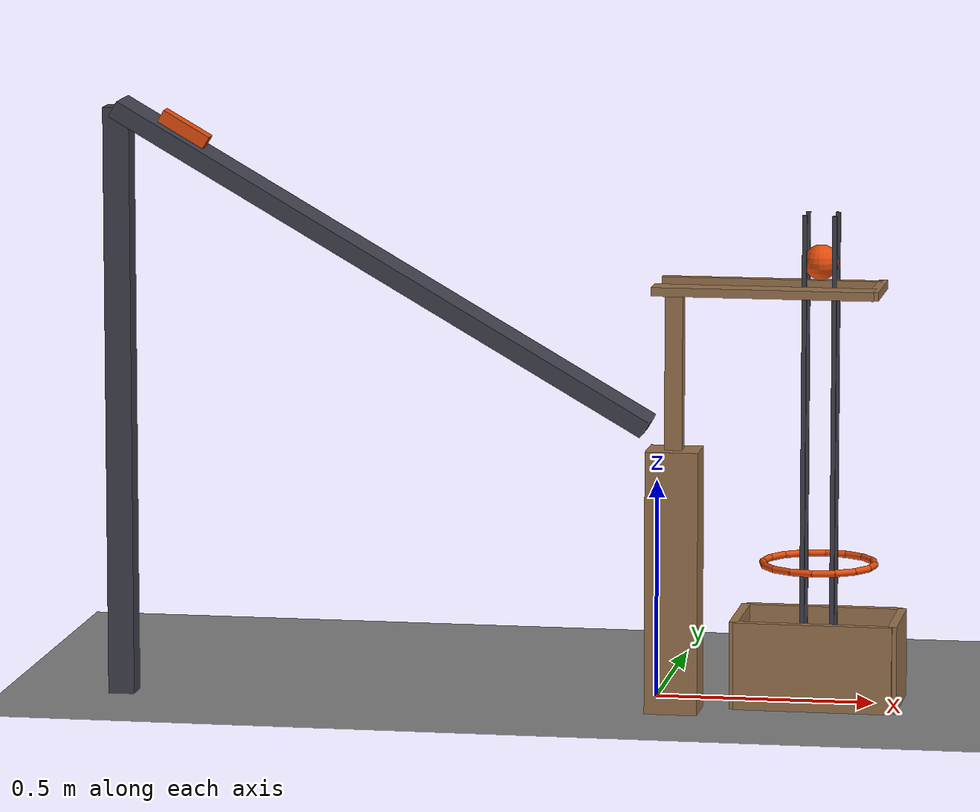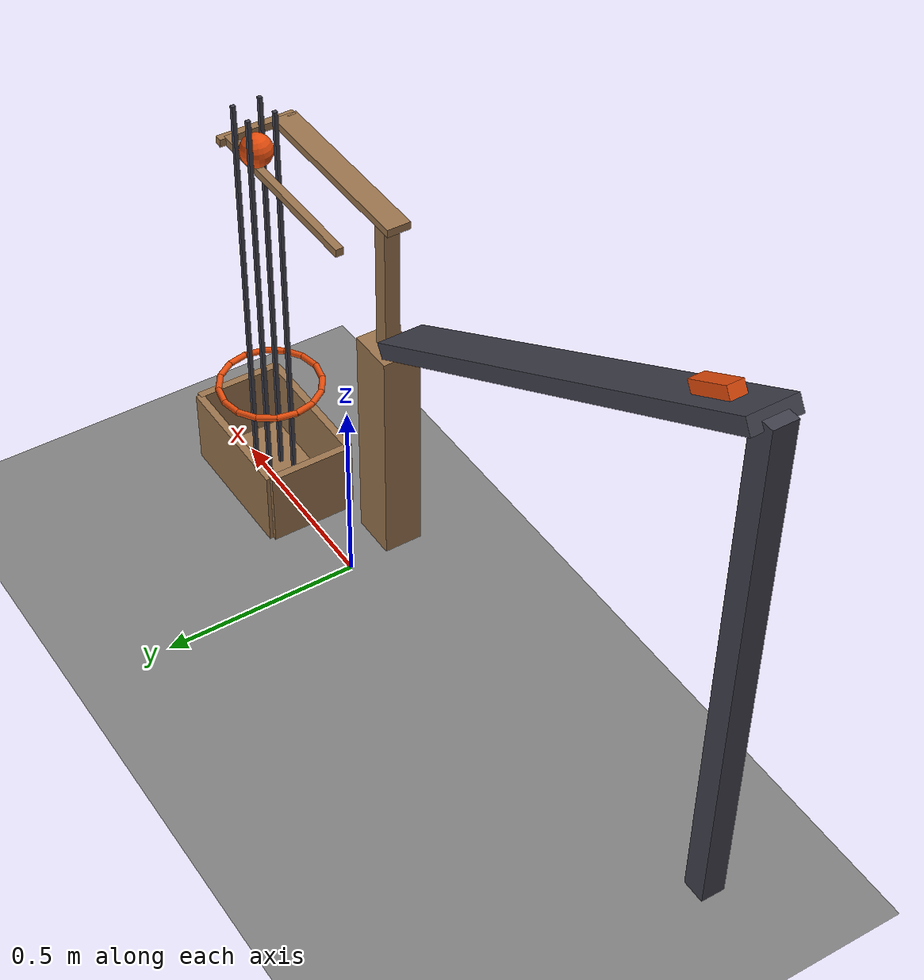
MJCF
<mujoco model="cart_domino_flap_release">
  <compiler angle="radian"/>
  <option timestep="0.002"/>
  <worldbody>
    <geom name="floor" type="plane" size="6 6 0.1" friction="0.8 0.005 0.002"/>
    <body name="rail">
      <geom name="rail" type="box" pos="-0.606218 -0.15 1" size="0.7 0.06 0.02" euler="0 0.523599 0" friction="0.02 0.005 0.0001" solref="0.01 1" rgba="0.25 0.25 0.3 1"/>
    </body>
    <body name="rail support">
      <geom name="rail support" type="box" pos="-1.21244 -0.15 0.675" size="0.03 0.03 0.675" rgba="0.25 0.25 0.3 1"/>
    </body>
    <body name="domino support">
      <geom name="domino support" type="box" pos="0.06 -0.15 0.3" size="0.06 0.05 0.3" friction="0.65 0.005 0.0001" solref="0.01 1" rgba="0.6 0.45 0.3 1"/>
    </body>
    <body name="domino" pos="0.06 -0.15 0.775">
      <freejoint/>
      <geom name="domino" type="box" pos="0 0 0" size="0.02 0.02 0.175" mass="0.15" friction="0.65 0.005 0.0001" solref="0.01 1" rgba="0.6 0.45 0.3 1"/>
    </body>
    <body name="cart" pos="-1.05869 -0.15 1.30165">
      <freejoint/>
      <geom name="cart" type="box" pos="0 0 0" size="0.0600004 0.02 0.015" euler="0 0.523595 0" mass="0.8" friction="0.02 0.005 0.0001" solref="0.01 1" rgba="0.9 0.3 0.05 1"/>
    </body>
    <body name="flap" pos="0.51 -0.15 0.96">
      <joint name="flap_hinge" type="hinge" pos="0 0 0" axis="0 1 0" limited="true" range="-1.39626 0" stiffness="1" springref="-1.39626" damping="0.05" armature="0.002"/>
      <geom name="flap" type="box" pos="-0.25 0 0" size="0.25 0.03 0.01" mass="0.3" friction="0.15 0.005 0.0001" solref="0.01 1" rgba="0.6 0.45 0.3 1"/>
      <geom name="flap shelf" type="box" pos="-0.25 0.15 0" size="0.25 0.01 0.01" mass="0.08" friction="0.08 0.005 0.0001" solref="0.01 1" rgba="0.6 0.45 0.3 1"/>
      <geom name="flap crossbar" type="box" pos="0 0.075 0" size="0.01 0.1 0.01" mass="0.05" friction="0.08 0.005 0.0001" solref="0.01 1" rgba="0.6 0.45 0.3 1"/>
    </body>
    <body name="ball" pos="0.371 0 1.01">
      <freejoint/>
      <geom name="ball" type="sphere" pos="0 0 0" size="0.04" mass="0.15" condim="6" friction="0.08 0.02 0.01" solref="0.01 1" rgba="0.9 0.3 0.05 1"/>
    </body>
    <body name="guide near left">
      <geom name="guide near left" type="box" pos="0.337 0.034 0.56" size="0.005 0.005 0.56" friction="0.03 0.005 0.0001" solref="0.01 1" rgba="0.25 0.25 0.3 1"/>
    </body>
    <body name="guide near right">
      <geom name="guide near right" type="box" pos="0.337 -0.034 0.56" size="0.005 0.005 0.56" friction="0.03 0.005 0.0001" solref="0.01 1" rgba="0.25 0.25 0.3 1"/>
    </body>
    <body name="guide far left">
      <geom name="guide far left" type="box" pos="0.405 0.034 0.56" size="0.005 0.005 0.56" friction="0.03 0.005 0.0001" solref="0.01 1" rgba="0.25 0.25 0.3 1"/>
    </body>
    <body name="guide far right">
      <geom name="guide far right" type="box" pos="0.405 -0.034 0.56" size="0.005 0.005 0.56" friction="0.03 0.005 0.0001" solref="0.01 1" rgba="0.25 0.25 0.3 1"/>
    </body>
    <body name="ring">
      <geom name="ring_00" type="capsule" size="0.008" fromto="0.499 0 0.32 0.489257 0.0489835 0.32" friction="0.1 0.005 0.0001" solref="0.01 1" rgba="0.9 0.3 0.05 1"/>
      <geom name="ring_01" type="capsule" size="0.008" fromto="0.489257 0.0489835 0.32 0.46151 0.0905097 0.32" friction="0.1 0.005 0.0001" solref="0.01 1" rgba="0.9 0.3 0.05 1"/>
      <geom name="ring_02" type="capsule" size="0.008" fromto="0.46151 0.0905097 0.32 0.419983 0.118257 0.32" friction="0.1 0.005 0.0001" solref="0.01 1" rgba="0.9 0.3 0.05 1"/>
      <geom name="ring_03" type="capsule" size="0.008" fromto="0.419983 0.118257 0.32 0.371 0.128 0.32" friction="0.1 0.005 0.0001" solref="0.01 1" rgba="0.9 0.3 0.05 1"/>
      <geom name="ring_04" type="capsule" size="0.008" fromto="0.371 0.128 0.32 0.322017 0.118257 0.32" friction="0.1 0.005 0.0001" solref="0.01 1" rgba="0.9 0.3 0.05 1"/>
      <geom name="ring_05" type="capsule" size="0.008" fromto="0.322017 0.118257 0.32 0.28049 0.0905097 0.32" friction="0.1 0.005 0.0001" solref="0.01 1" rgba="0.9 0.3 0.05 1"/>
      <geom name="ring_06" type="capsule" size="0.008" fromto="0.28049 0.0905097 0.32 0.252743 0.0489835 0.32" friction="0.1 0.005 0.0001" solref="0.01 1" rgba="0.9 0.3 0.05 1"/>
      <geom name="ring_07" type="capsule" size="0.008" fromto="0.252743 0.0489835 0.32 0.243 1.56755e-17 0.32" friction="0.1 0.005 0.0001" solref="0.01 1" rgba="0.9 0.3 0.05 1"/>
      <geom name="ring_08" type="capsule" size="0.008" fromto="0.243 1.56755e-17 0.32 0.252743 -0.0489835 0.32" friction="0.1 0.005 0.0001" solref="0.01 1" rgba="0.9 0.3 0.05 1"/>
      <geom name="ring_09" type="capsule" size="0.008" fromto="0.252743 -0.0489835 0.32 0.28049 -0.0905097 0.32" friction="0.1 0.005 0.0001" solref="0.01 1" rgba="0.9 0.3 0.05 1"/>
      <geom name="ring_10" type="capsule" size="0.008" fromto="0.28049 -0.0905097 0.32 0.322017 -0.118257 0.32" friction="0.1 0.005 0.0001" solref="0.01 1" rgba="0.9 0.3 0.05 1"/>
      <geom name="ring_11" type="capsule" size="0.008" fromto="0.322017 -0.118257 0.32 0.371 -0.128 0.32" friction="0.1 0.005 0.0001" solref="0.01 1" rgba="0.9 0.3 0.05 1"/>
      <geom name="ring_12" type="capsule" size="0.008" fromto="0.371 -0.128 0.32 0.419983 -0.118257 0.32" friction="0.1 0.005 0.0001" solref="0.01 1" rgba="0.9 0.3 0.05 1"/>
      <geom name="ring_13" type="capsule" size="0.008" fromto="0.419983 -0.118257 0.32 0.46151 -0.0905097 0.32" friction="0.1 0.005 0.0001" solref="0.01 1" rgba="0.9 0.3 0.05 1"/>
      <geom name="ring_14" type="capsule" size="0.008" fromto="0.46151 -0.0905097 0.32 0.489257 -0.0489835 0.32" friction="0.1 0.005 0.0001" solref="0.01 1" rgba="0.9 0.3 0.05 1"/>
      <geom name="ring_15" type="capsule" size="0.008" fromto="0.489257 -0.0489835 0.32 0.499 -3.1351e-17 0.32" friction="0.1 0.005 0.0001" solref="0.01 1" rgba="0.9 0.3 0.05 1"/>
    </body>
    <body name="box">
      <geom name="box_base" type="box" pos="0.371 0 0.01" size="0.18 0.11 0.01" friction="1 0.02 0.01" solref="0.01 1" rgba="0.6 0.45 0.3 1"/>
      <geom name="box_near_wall" type="box" pos="0.191 0 0.1" size="0.01 0.11 0.1" friction="1 0.02 0.01" solref="0.01 1" rgba="0.6 0.45 0.3 1"/>
      <geom name="box_far_wall" type="box" pos="0.551 0 0.1" size="0.01 0.11 0.1" friction="1 0.02 0.01" solref="0.01 1" rgba="0.6 0.45 0.3 1"/>
      <geom name="box_left_wall" type="box" pos="0.371 0.11 0.1" size="0.18 0.01 0.1" friction="1 0.02 0.01" solref="0.01 1" rgba="0.6 0.45 0.3 1"/>
      <geom name="box_right_wall" type="box" pos="0.371 -0.11 0.1" size="0.18 0.01 0.1" friction="1 0.02 0.01" solref="0.01 1" rgba="0.6 0.45 0.3 1"/>
    </body>
  </worldbody>
  <keyframe>
    <key name="start" qpos="0.06 -0.15 0.775 1 0 0 0 -1.05869 -0.15 1.30165 1 0 0 0 0 0.371 0 1.01 1 0 0 0" qvel="0 0 0 0 0 0 0 0 0 0 0 0 0 0 0 0 0 0 0"/>
  </keyframe>
</mujoco>
